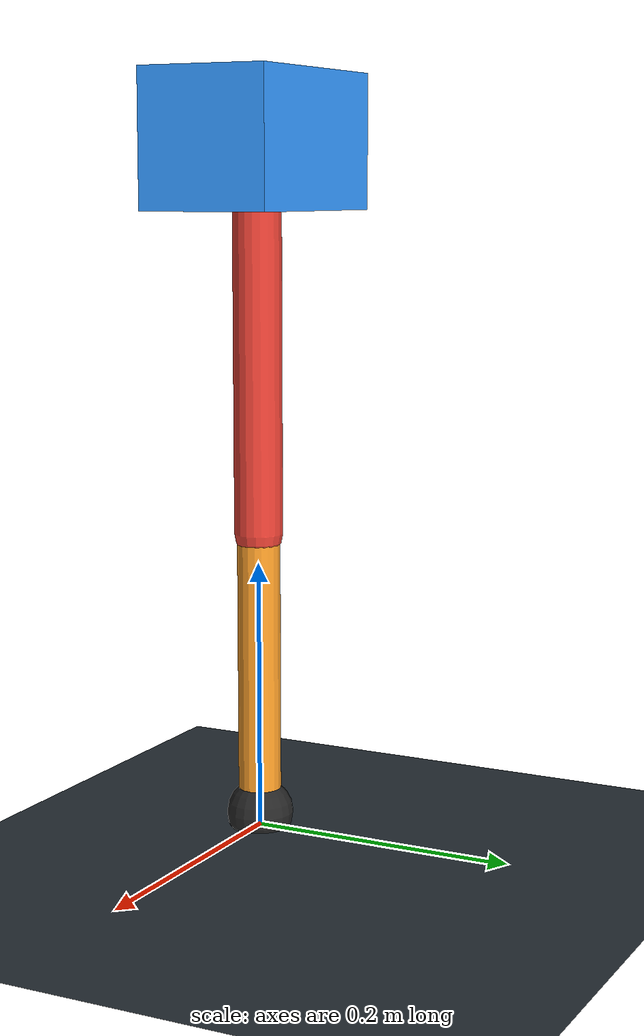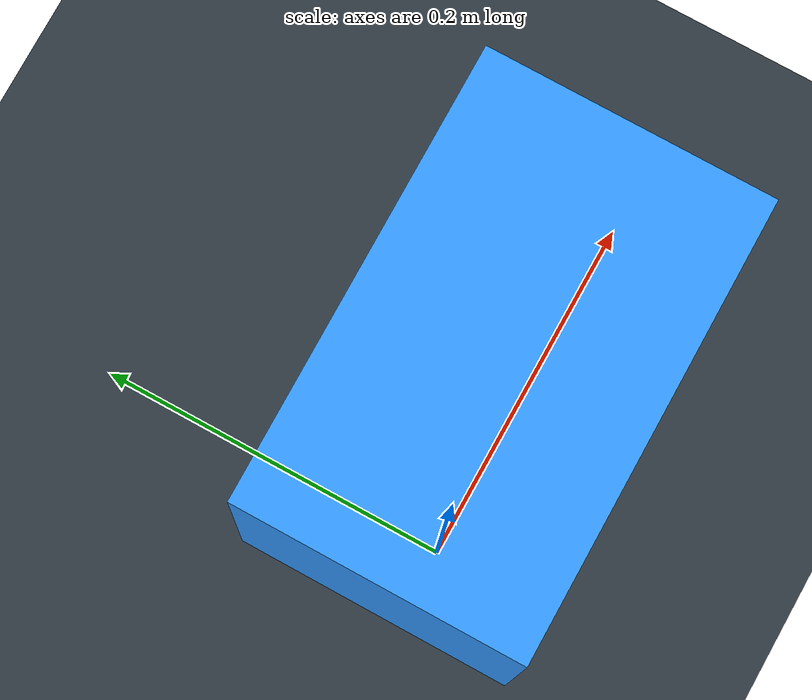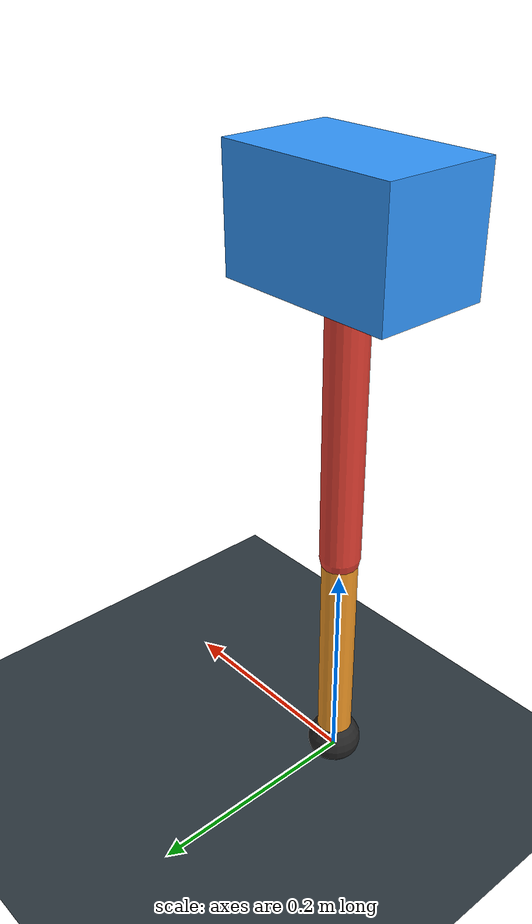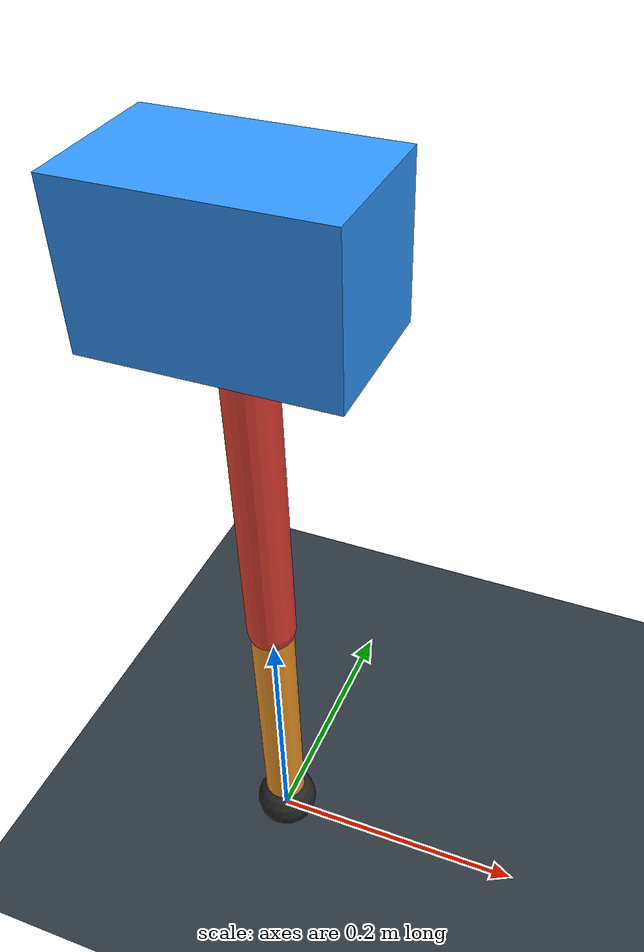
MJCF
<mujoco model="single_axis_two_bar">
  <compiler angle="radian" inertiafromgeom="true"/>
  <option timestep="0.001" integrator="implicitfast" gravity="0 0 -9.81"/>
  <default>
    <joint damping="0.08"/>
    <geom friction="1.2 0.01 0.0001" condim="3"/>
  </default>
  <worldbody>
    <geom name="floor" type="plane" size="5 5 0.1" rgba="0.18 0.22 0.25 1"/>
    <body name="carriage" pos="0 0 0.5096131765185945">
      <joint name="pole_slide" type="slide" axis="0 0 1"/>
      <geom name="payload" type="box" size="0.08 0.05 0.05" mass="2.1868283508162976" rgba="0.2 0.6 1 1"/>
      <body name="thigh" pos="0 0 0">
        <joint name="hip" type="hinge" axis="0 1 0"/>
        <geom name="thigh_link" type="capsule" fromto="0 0 0 0 0 -0.28714148755294333" size="0.018" mass="0.20459210412147052" rgba="0.9 0.25 0.2 1"/>
        <body name="shank" pos="0 0 -0.28714148755294333">
          <joint name="knee" type="hinge" axis="0 1 0"/>
          <geom name="shank_link" type="capsule" fromto="0 0 0 0 0 -0.21245972535282423" size="0.016" mass="0.15138036172146482" rgba="0.95 0.6 0.15 1"/>
          <geom name="foot" type="sphere" pos="0 0 -0.21245972535282423" size="0.025" mass="0.03" rgba="0.15 0.15 0.15 1"/>
          <site name="toe" pos="0 0 -0.21245972535282423" size="0.008"/>
        </body>
      </body>
    </body>
  </worldbody>
  <actuator>
    <motor name="hip_motor" joint="hip" ctrlrange="-47.50612073411119 47.50612073411119"/>
    <motor name="knee_motor" joint="knee" ctrlrange="-38.97989400470798 38.97989400470798"/>
  </actuator>
</mujoco>
